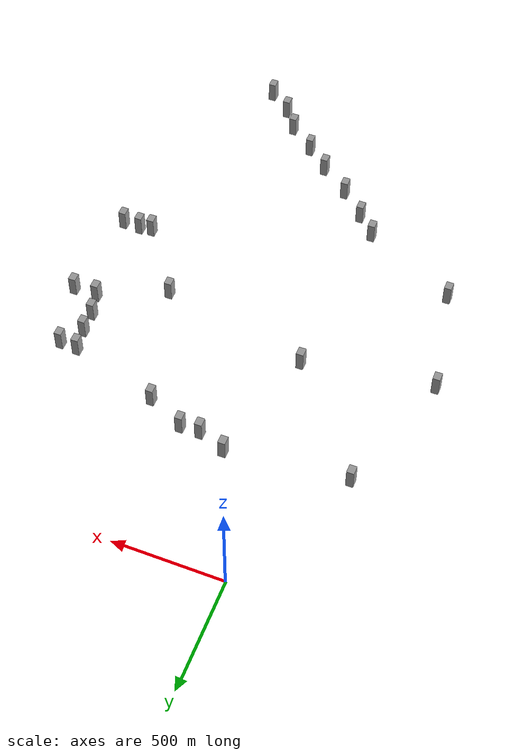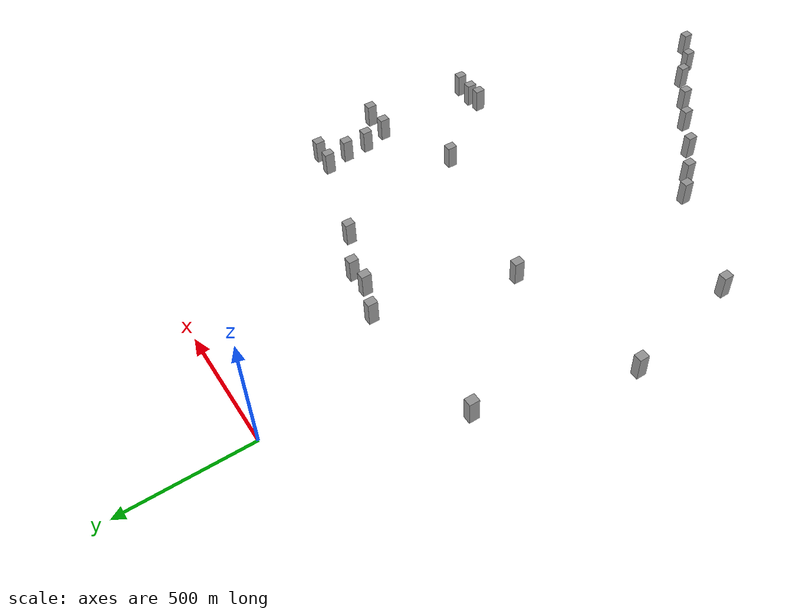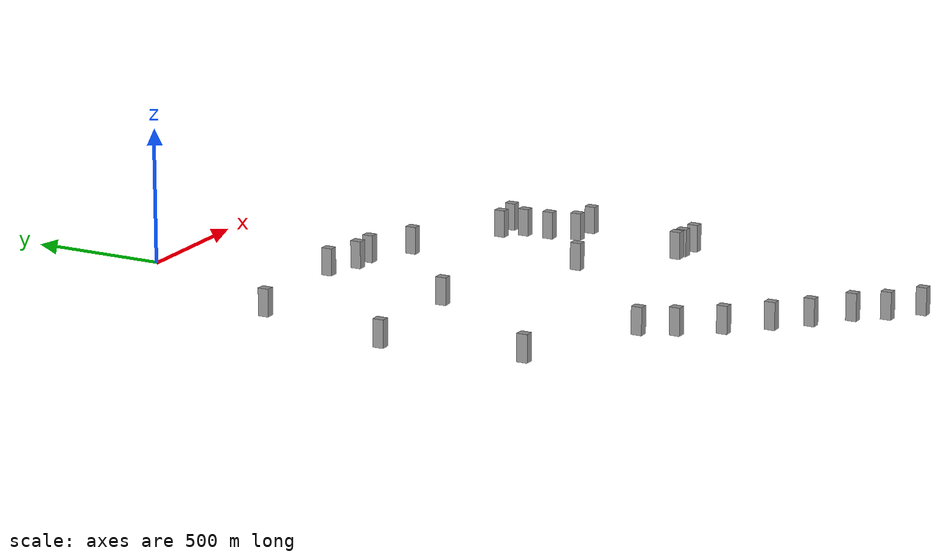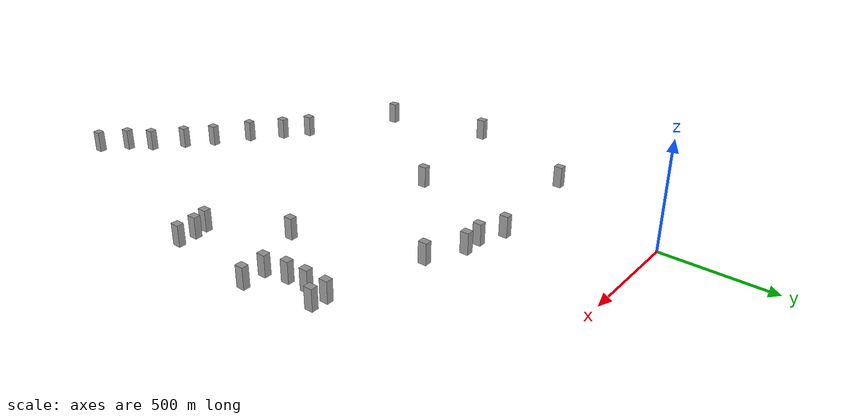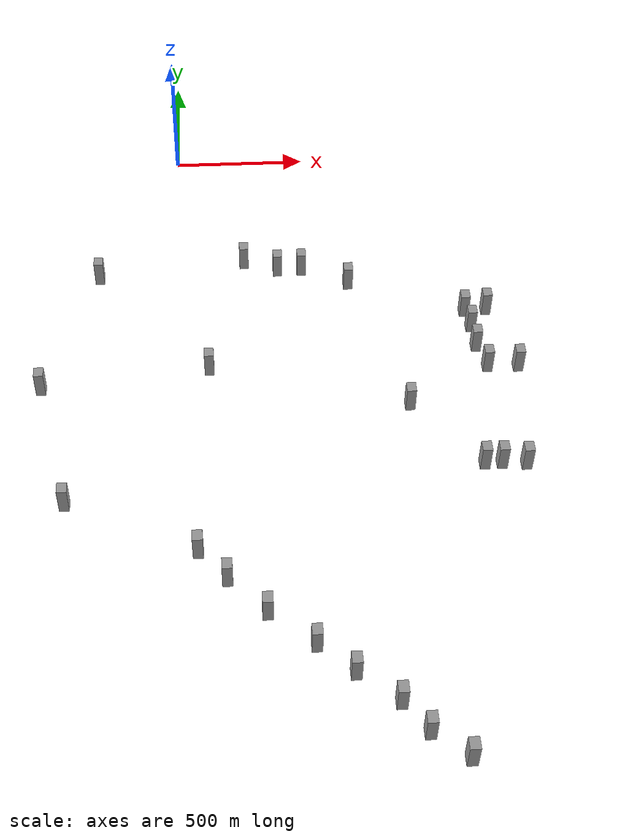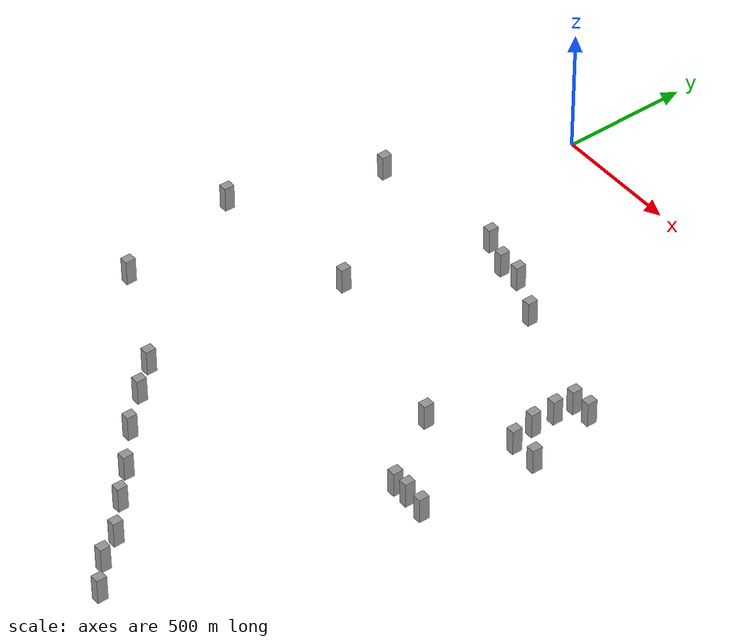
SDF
<sdf version="1.7">
 <world name="default">
  <model name="huge_building_1">
   <link name="link">
    <inertial>
     <mass>137299</mass>
     <inertia>
      <ixx>1.37911e+08</ixx>
      <ixy>0</ixy>
      <ixz>0</ixz>
      <iyy>1.32035e+08</iyy>
      <iyz>0</iyz>
      <izz>3.13216e+07</izz>
     </inertia>
    </inertial>
    <visual name="visual">
     <geometry><box><size>33.3468 40.3177 102.117</size></box></geometry>
     <material>
      <script><name>Gazebo/Grey</name><uri>file://media/materials/scripts/gazebo.material</uri></script>
      <shader type="pixel"/>
     </material>
    </visual>
    <collision name="collision">
     <geometry><box><size>33.3468 40.3177 102.117</size></box></geometry>
     <surface>
      <friction>
       <ode><mu>1</mu><mu2>1</mu2><fdir1>0 0 0</fdir1><slip1>0</slip1><slip2>0</slip2></ode>
       <torsional>
        <coefficient>1</coefficient>
        <patch_radius>0</patch_radius>
        <surface_radius>0</surface_radius>
        <use_patch_radius>1</use_patch_radius>
        <ode><slip>0</slip></ode>
       </torsional>
      </friction>
      <bounce><restitution_coefficient>0</restitution_coefficient><threshold>1e+06</threshold></bounce>
      <contact>
       <collide_without_contact>0</collide_without_contact>
       <collide_without_contact_bitmask>1</collide_without_contact_bitmask>
       <collide_bitmask>1</collide_bitmask>
       <ode>
        <soft_cfm>0</soft_cfm>
        <soft_erp>0.2</soft_erp>
        <kp>1e+13</kp>
        <kd>1</kd>
        <max_vel>0.01</max_vel>
        <min_depth>0</min_depth>
       </ode>
       <bullet>
        <split_impulse>1</split_impulse>
        <split_impulse_penetration_threshold>-0.01</split_impulse_penetration_threshold>
        <soft_cfm>0</soft_cfm>
        <soft_erp>0.2</soft_erp>
        <kp>1e+13</kp>
        <kd>1</kd>
       </bullet>
      </contact>
     </surface>
    </collision>
   </link>
   <static>0</static>
   <pose>1025.33 -1589.03 27 0 -0 0</pose>
  </model>
  <model name="huge_building_3">
   <link name="link">
    <inertial>
     <mass>137299</mass>
     <inertia>
      <ixx>1.37911e+08</ixx>
      <ixy>0</ixy>
      <ixz>0</ixz>
      <iyy>1.32035e+08</iyy>
      <iyz>0</iyz>
      <izz>3.13216e+07</izz>
     </inertia>
    </inertial>
    <visual name="visual">
     <geometry><box><size>33.3468 40.3177 102.117</size></box></geometry>
     <material>
      <script><name>Gazebo/Grey</name><uri>file://media/materials/scripts/gazebo.material</uri></script>
      <shader type="pixel"/>
     </material>
    </visual>
    <collision name="collision">
     <geometry><box><size>33.3468 40.3177 102.117</size></box></geometry>
     <surface>
      <friction>
       <ode><mu>1</mu><mu2>1</mu2><fdir1>0 0 0</fdir1><slip1>0</slip1><slip2>0</slip2></ode>
       <torsional>
        <coefficient>1</coefficient>
        <patch_radius>0</patch_radius>
        <surface_radius>0</surface_radius>
        <use_patch_radius>1</use_patch_radius>
        <ode><slip>0</slip></ode>
       </torsional>
      </friction>
      <bounce><restitution_coefficient>0</restitution_coefficient><threshold>1e+06</threshold></bounce>
      <contact>
       <collide_without_contact>0</collide_without_contact>
       <collide_without_contact_bitmask>1</collide_without_contact_bitmask>
       <collide_bitmask>1</collide_bitmask>
       <ode>
        <soft_cfm>0</soft_cfm>
        <soft_erp>0.2</soft_erp>
        <kp>1e+13</kp>
        <kd>1</kd>
        <max_vel>0.01</max_vel>
        <min_depth>0</min_depth>
       </ode>
       <bullet>
        <split_impulse>1</split_impulse>
        <split_impulse_penetration_threshold>-0.01</split_impulse_penetration_threshold>
        <soft_cfm>0</soft_cfm>
        <soft_erp>0.2</soft_erp>
        <kp>1e+13</kp>
        <kd>1</kd>
       </bullet>
      </contact>
     </surface>
    </collision>
   </link>
   <static>0</static>
   <pose>635.531 -705.591 24 0 -0 0</pose>
  </model>
  <model name="huge_building_4">
   <link name="link">
    <inertial>
     <mass>137299</mass>
     <inertia>
      <ixx>1.37911e+08</ixx>
      <ixy>0</ixy>
      <ixz>0</ixz>
      <iyy>1.32035e+08</iyy>
      <iyz>0</iyz>
      <izz>3.13216e+07</izz>
     </inertia>
    </inertial>
    <visual name="visual">
     <geometry><box><size>33.3468 40.3177 102.117</size></box></geometry>
     <material>
      <script><name>Gazebo/Grey</name><uri>file://media/materials/scripts/gazebo.material</uri></script>
      <shader type="pixel"/>
     </material>
    </visual>
    <collision name="collision">
     <geometry><box><size>33.3468 40.3177 102.117</size></box></geometry>
     <surface>
      <friction>
       <ode><mu>1</mu><mu2>1</mu2><fdir1>0 0 0</fdir1><slip1>0</slip1><slip2>0</slip2></ode>
       <torsional>
        <coefficient>1</coefficient>
        <patch_radius>0</patch_radius>
        <surface_radius>0</surface_radius>
        <use_patch_radius>1</use_patch_radius>
        <ode><slip>0</slip></ode>
       </torsional>
      </friction>
      <bounce><restitution_coefficient>0</restitution_coefficient><threshold>1e+06</threshold></bounce>
      <contact>
       <collide_without_contact>0</collide_without_contact>
       <collide_without_contact_bitmask>1</collide_without_contact_bitmask>
       <collide_bitmask>1</collide_bitmask>
       <ode>
        <soft_cfm>0</soft_cfm>
        <soft_erp>0.2</soft_erp>
        <kp>1e+13</kp>
        <kd>1</kd>
        <max_vel>0.01</max_vel>
        <min_depth>0</min_depth>
       </ode>
       <bullet>
        <split_impulse>1</split_impulse>
        <split_impulse_penetration_threshold>-0.01</split_impulse_penetration_threshold>
        <soft_cfm>0</soft_cfm>
        <soft_erp>0.2</soft_erp>
        <kp>1e+13</kp>
        <kd>1</kd>
       </bullet>
      </contact>
     </surface>
    </collision>
   </link>
   <static>0</static>
   <pose>-298.487 -633.428 26 0 -0 0</pose>
  </model>
  <model name="huge_building_12">
   <link name="link">
    <inertial>
     <mass>137299</mass>
     <inertia>
      <ixx>1.37911e+08</ixx>
      <ixy>0</ixy>
      <ixz>0</ixz>
      <iyy>1.32035e+08</iyy>
      <iyz>0</iyz>
      <izz>3.13216e+07</izz>
     </inertia>
    </inertial>
    <visual name="visual">
     <geometry><box><size>33.3468 40.3177 102.117</size></box></geometry>
     <material>
      <script><name>Gazebo/Grey</name><uri>file://media/materials/scripts/gazebo.material</uri></script>
      <shader type="pixel"/>
     </material>
    </visual>
    <collision name="collision">
     <geometry><box><size>33.3468 40.3177 102.117</size></box></geometry>
     <surface>
      <friction>
       <ode><mu>1</mu><mu2>1</mu2><fdir1>0 0 0</fdir1><slip1>0</slip1><slip2>0</slip2></ode>
       <torsional>
        <coefficient>1</coefficient>
        <patch_radius>0</patch_radius>
        <surface_radius>0</surface_radius>
        <use_patch_radius>1</use_patch_radius>
        <ode><slip>0</slip></ode>
       </torsional>
      </friction>
      <bounce><restitution_coefficient>0</restitution_coefficient><threshold>1e+06</threshold></bounce>
      <contact>
       <collide_without_contact>0</collide_without_contact>
       <collide_without_contact_bitmask>1</collide_without_contact_bitmask>
       <collide_bitmask>1</collide_bitmask>
       <ode>
        <soft_cfm>0</soft_cfm>
        <soft_erp>0.2</soft_erp>
        <kp>1e+13</kp>
        <kd>1</kd>
        <max_vel>0.01</max_vel>
        <min_depth>0</min_depth>
       </ode>
       <bullet>
        <split_impulse>1</split_impulse>
        <split_impulse_penetration_threshold>-0.01</split_impulse_penetration_threshold>
        <soft_cfm>0</soft_cfm>
        <soft_erp>0.2</soft_erp>
        <kp>1e+13</kp>
        <kd>1</kd>
       </bullet>
      </contact>
     </surface>
    </collision>
   </link>
   <static>0</static>
   <pose>1085.29 -1585.35 21 0 -0 0</pose>
  </model>
  <model name="huge_building_13">
   <link name="link">
    <inertial>
     <mass>137299</mass>
     <inertia>
      <ixx>1.37911e+08</ixx>
      <ixy>0</ixy>
      <ixz>0</ixz>
      <iyy>1.32035e+08</iyy>
      <iyz>0</iyz>
      <izz>3.13216e+07</izz>
     </inertia>
    </inertial>
    <visual name="visual">
     <geometry><box><size>33.3468 40.3177 102.117</size></box></geometry>
     <material>
      <script><name>Gazebo/Grey</name><uri>file://media/materials/scripts/gazebo.material</uri></script>
      <shader type="pixel"/>
     </material>
    </visual>
    <collision name="collision">
     <geometry><box><size>33.3468 40.3177 102.117</size></box></geometry>
     <surface>
      <friction>
       <ode><mu>1</mu><mu2>1</mu2><fdir1>0 0 0</fdir1><slip1>0</slip1><slip2>0</slip2></ode>
       <torsional>
        <coefficient>1</coefficient>
        <patch_radius>0</patch_radius>
        <surface_radius>0</surface_radius>
        <use_patch_radius>1</use_patch_radius>
        <ode><slip>0</slip></ode>
       </torsional>
      </friction>
      <bounce><restitution_coefficient>0</restitution_coefficient><threshold>1e+06</threshold></bounce>
      <contact>
       <collide_without_contact>0</collide_without_contact>
       <collide_without_contact_bitmask>1</collide_without_contact_bitmask>
       <collide_bitmask>1</collide_bitmask>
       <ode>
        <soft_cfm>0</soft_cfm>
        <soft_erp>0.2</soft_erp>
        <kp>1e+13</kp>
        <kd>1</kd>
        <max_vel>0.01</max_vel>
        <min_depth>0</min_depth>
       </ode>
       <bullet>
        <split_impulse>1</split_impulse>
        <split_impulse_penetration_threshold>-0.01</split_impulse_penetration_threshold>
        <soft_cfm>0</soft_cfm>
        <soft_erp>0.2</soft_erp>
        <kp>1e+13</kp>
        <kd>1</kd>
       </bullet>
      </contact>
     </surface>
    </collision>
   </link>
   <static>0</static>
   <pose>1168.46 -1590.58 18 0 -0 0</pose>
  </model>
  <model name="huge_building_26">
   <link name="link">
    <inertial>
     <mass>137299</mass>
     <inertia>
      <ixx>1.37911e+08</ixx>
      <ixy>0</ixy>
      <ixz>0</ixz>
      <iyy>1.32035e+08</iyy>
      <iyz>0</iyz>
      <izz>3.13216e+07</izz>
     </inertia>
    </inertial>
    <visual name="visual">
     <geometry><box><size>33.3468 40.3177 102.117</size></box></geometry>
     <material>
      <script><name>Gazebo/Grey</name><uri>file://media/materials/scripts/gazebo.material</uri></script>
      <shader type="pixel"/>
     </material>
    </visual>
    <collision name="collision">
     <geometry><box><size>33.3468 40.3177 102.117</size></box></geometry>
     <surface>
      <friction>
       <ode><mu>1</mu><mu2>1</mu2><fdir1>0 0 0</fdir1><slip1>0</slip1><slip2>0</slip2></ode>
       <torsional>
        <coefficient>1</coefficient>
        <patch_radius>0</patch_radius>
        <surface_radius>0</surface_radius>
        <use_patch_radius>1</use_patch_radius>
        <ode><slip>0</slip></ode>
       </torsional>
      </friction>
      <bounce><restitution_coefficient>0</restitution_coefficient><threshold>1e+06</threshold></bounce>
      <contact>
       <collide_without_contact>0</collide_without_contact>
       <collide_without_contact_bitmask>1</collide_without_contact_bitmask>
       <collide_bitmask>1</collide_bitmask>
       <ode>
        <soft_cfm>0</soft_cfm>
        <soft_erp>0.2</soft_erp>
        <kp>1e+13</kp>
        <kd>1</kd>
        <max_vel>0.01</max_vel>
        <min_depth>0</min_depth>
       </ode>
       <bullet>
        <split_impulse>1</split_impulse>
        <split_impulse_penetration_threshold>-0.01</split_impulse_penetration_threshold>
        <soft_cfm>0</soft_cfm>
        <soft_erp>0.2</soft_erp>
        <kp>1e+13</kp>
        <kd>1</kd>
       </bullet>
      </contact>
     </surface>
    </collision>
   </link>
   <static>0</static>
   <pose>830.839 -2647.02 20 0 -0 0</pose>
  </model>
  <model name="huge_building_27">
   <link name="link">
    <inertial>
     <mass>137299</mass>
     <inertia>
      <ixx>1.37911e+08</ixx>
      <ixy>0</ixy>
      <ixz>0</ixz>
      <iyy>1.32035e+08</iyy>
      <iyz>0</iyz>
      <izz>3.13216e+07</izz>
     </inertia>
    </inertial>
    <visual name="visual">
     <geometry><box><size>33.3468 40.3177 102.117</size></box></geometry>
     <material>
      <script><name>Gazebo/Grey</name><uri>file://media/materials/scripts/gazebo.material</uri></script>
      <shader type="pixel"/>
     </material>
    </visual>
    <collision name="collision">
     <geometry><box><size>33.3468 40.3177 102.117</size></box></geometry>
     <surface>
      <friction>
       <ode><mu>1</mu><mu2>1</mu2><fdir1>0 0 0</fdir1><slip1>0</slip1><slip2>0</slip2></ode>
       <torsional>
        <coefficient>1</coefficient>
        <patch_radius>0</patch_radius>
        <surface_radius>0</surface_radius>
        <use_patch_radius>1</use_patch_radius>
        <ode><slip>0</slip></ode>
       </torsional>
      </friction>
      <bounce><restitution_coefficient>0</restitution_coefficient><threshold>1e+06</threshold></bounce>
      <contact>
       <collide_without_contact>0</collide_without_contact>
       <collide_without_contact_bitmask>1</collide_without_contact_bitmask>
       <collide_bitmask>1</collide_bitmask>
       <ode>
        <soft_cfm>0</soft_cfm>
        <soft_erp>0.2</soft_erp>
        <kp>1e+13</kp>
        <kd>1</kd>
        <max_vel>0.01</max_vel>
        <min_depth>0</min_depth>
       </ode>
       <bullet>
        <split_impulse>1</split_impulse>
        <split_impulse_penetration_threshold>-0.01</split_impulse_penetration_threshold>
        <soft_cfm>0</soft_cfm>
        <soft_erp>0.2</soft_erp>
        <kp>1e+13</kp>
        <kd>1</kd>
       </bullet>
      </contact>
     </surface>
    </collision>
   </link>
   <static>0</static>
   <pose>722.414 -2559.58 20 0 -0 0</pose>
  </model>
  <model name="huge_building_28">
   <link name="link">
    <inertial>
     <mass>137299</mass>
     <inertia>
      <ixx>1.37911e+08</ixx>
      <ixy>0</ixy>
      <ixz>0</ixz>
      <iyy>1.32035e+08</iyy>
      <iyz>0</iyz>
      <izz>3.13216e+07</izz>
     </inertia>
    </inertial>
    <visual name="visual">
     <geometry><box><size>33.3468 40.3177 102.117</size></box></geometry>
     <material>
      <script><name>Gazebo/Grey</name><uri>file://media/materials/scripts/gazebo.material</uri></script>
      <shader type="pixel"/>
     </material>
    </visual>
    <collision name="collision">
     <geometry><box><size>33.3468 40.3177 102.117</size></box></geometry>
     <surface>
      <friction>
       <ode><mu>1</mu><mu2>1</mu2><fdir1>0 0 0</fdir1><slip1>0</slip1><slip2>0</slip2></ode>
       <torsional>
        <coefficient>1</coefficient>
        <patch_radius>0</patch_radius>
        <surface_radius>0</surface_radius>
        <use_patch_radius>1</use_patch_radius>
        <ode><slip>0</slip></ode>
       </torsional>
      </friction>
      <bounce><restitution_coefficient>0</restitution_coefficient><threshold>1e+06</threshold></bounce>
      <contact>
       <collide_without_contact>0</collide_without_contact>
       <collide_without_contact_bitmask>1</collide_without_contact_bitmask>
       <collide_bitmask>1</collide_bitmask>
       <ode>
        <soft_cfm>0</soft_cfm>
        <soft_erp>0.2</soft_erp>
        <kp>1e+13</kp>
        <kd>1</kd>
        <max_vel>0.01</max_vel>
        <min_depth>0</min_depth>
       </ode>
       <bullet>
        <split_impulse>1</split_impulse>
        <split_impulse_penetration_threshold>-0.01</split_impulse_penetration_threshold>
        <soft_cfm>0</soft_cfm>
        <soft_erp>0.2</soft_erp>
        <kp>1e+13</kp>
        <kd>1</kd>
       </bullet>
      </contact>
     </surface>
    </collision>
   </link>
   <static>0</static>
   <pose>650.039 -2459.02 20 0 -0 0</pose>
  </model>
  <model name="huge_building_29">
   <link name="link">
    <inertial>
     <mass>137299</mass>
     <inertia>
      <ixx>1.37911e+08</ixx>
      <ixy>0</ixy>
      <ixz>0</ixz>
      <iyy>1.32035e+08</iyy>
      <iyz>0</iyz>
      <izz>3.13216e+07</izz>
     </inertia>
    </inertial>
    <visual name="visual">
     <geometry><box><size>33.3468 40.3177 102.117</size></box></geometry>
     <material>
      <script><name>Gazebo/Grey</name><uri>file://media/materials/scripts/gazebo.material</uri></script>
      <shader type="pixel"/>
     </material>
    </visual>
    <collision name="collision">
     <geometry><box><size>33.3468 40.3177 102.117</size></box></geometry>
     <surface>
      <friction>
       <ode><mu>1</mu><mu2>1</mu2><fdir1>0 0 0</fdir1><slip1>0</slip1><slip2>0</slip2></ode>
       <torsional>
        <coefficient>1</coefficient>
        <patch_radius>0</patch_radius>
        <surface_radius>0</surface_radius>
        <use_patch_radius>1</use_patch_radius>
        <ode><slip>0</slip></ode>
       </torsional>
      </friction>
      <bounce><restitution_coefficient>0</restitution_coefficient><threshold>1e+06</threshold></bounce>
      <contact>
       <collide_without_contact>0</collide_without_contact>
       <collide_without_contact_bitmask>1</collide_without_contact_bitmask>
       <collide_bitmask>1</collide_bitmask>
       <ode>
        <soft_cfm>0</soft_cfm>
        <soft_erp>0.2</soft_erp>
        <kp>1e+13</kp>
        <kd>1</kd>
        <max_vel>0.01</max_vel>
        <min_depth>0</min_depth>
       </ode>
       <bullet>
        <split_impulse>1</split_impulse>
        <split_impulse_penetration_threshold>-0.01</split_impulse_penetration_threshold>
        <soft_cfm>0</soft_cfm>
        <soft_erp>0.2</soft_erp>
        <kp>1e+13</kp>
        <kd>1</kd>
       </bullet>
      </contact>
     </surface>
    </collision>
   </link>
   <static>0</static>
   <pose>524.275 -2355.7 20 0 -0 0</pose>
  </model>
  <model name="huge_building_30">
   <link name="link">
    <inertial>
     <mass>137299</mass>
     <inertia>
      <ixx>1.37911e+08</ixx>
      <ixy>0</ixy>
      <ixz>0</ixz>
      <iyy>1.32035e+08</iyy>
      <iyz>0</iyz>
      <izz>3.13216e+07</izz>
     </inertia>
    </inertial>
    <visual name="visual">
     <geometry><box><size>33.3468 40.3177 102.117</size></box></geometry>
     <material>
      <script><name>Gazebo/Grey</name><uri>file://media/materials/scripts/gazebo.material</uri></script>
      <shader type="pixel"/>
     </material>
    </visual>
    <collision name="collision">
     <geometry><box><size>33.3468 40.3177 102.117</size></box></geometry>
     <surface>
      <friction>
       <ode><mu>1</mu><mu2>1</mu2><fdir1>0 0 0</fdir1><slip1>0</slip1><slip2>0</slip2></ode>
       <torsional>
        <coefficient>1</coefficient>
        <patch_radius>0</patch_radius>
        <surface_radius>0</surface_radius>
        <use_patch_radius>1</use_patch_radius>
        <ode><slip>0</slip></ode>
       </torsional>
      </friction>
      <bounce><restitution_coefficient>0</restitution_coefficient><threshold>1e+06</threshold></bounce>
      <contact>
       <collide_without_contact>0</collide_without_contact>
       <collide_without_contact_bitmask>1</collide_without_contact_bitmask>
       <collide_bitmask>1</collide_bitmask>
       <ode>
        <soft_cfm>0</soft_cfm>
        <soft_erp>0.2</soft_erp>
        <kp>1e+13</kp>
        <kd>1</kd>
        <max_vel>0.01</max_vel>
        <min_depth>0</min_depth>
       </ode>
       <bullet>
        <split_impulse>1</split_impulse>
        <split_impulse_penetration_threshold>-0.01</split_impulse_penetration_threshold>
        <soft_cfm>0</soft_cfm>
        <soft_erp>0.2</soft_erp>
        <kp>1e+13</kp>
        <kd>1</kd>
       </bullet>
      </contact>
     </surface>
    </collision>
   </link>
   <static>0</static>
   <pose>413.35 -2255.65 22 0 -0 0</pose>
  </model>
  <model name="huge_building_31">
   <link name="link">
    <inertial>
     <mass>137299</mass>
     <inertia>
      <ixx>1.37911e+08</ixx>
      <ixy>0</ixy>
      <ixz>0</ixz>
      <iyy>1.32035e+08</iyy>
      <iyz>0</iyz>
      <izz>3.13216e+07</izz>
     </inertia>
    </inertial>
    <visual name="visual">
     <geometry><box><size>33.3468 40.3177 102.117</size></box></geometry>
     <material>
      <script><name>Gazebo/Grey</name><uri>file://media/materials/scripts/gazebo.material</uri></script>
      <shader type="pixel"/>
     </material>
    </visual>
    <collision name="collision">
     <geometry><box><size>33.3468 40.3177 102.117</size></box></geometry>
     <surface>
      <friction>
       <ode><mu>1</mu><mu2>1</mu2><fdir1>0 0 0</fdir1><slip1>0</slip1><slip2>0</slip2></ode>
       <torsional>
        <coefficient>1</coefficient>
        <patch_radius>0</patch_radius>
        <surface_radius>0</surface_radius>
        <use_patch_radius>1</use_patch_radius>
        <ode><slip>0</slip></ode>
       </torsional>
      </friction>
      <bounce><restitution_coefficient>0</restitution_coefficient><threshold>1e+06</threshold></bounce>
      <contact>
       <collide_without_contact>0</collide_without_contact>
       <collide_without_contact_bitmask>1</collide_without_contact_bitmask>
       <collide_bitmask>1</collide_bitmask>
       <ode>
        <soft_cfm>0</soft_cfm>
        <soft_erp>0.2</soft_erp>
        <kp>1e+13</kp>
        <kd>1</kd>
        <max_vel>0.01</max_vel>
        <min_depth>0</min_depth>
       </ode>
       <bullet>
        <split_impulse>1</split_impulse>
        <split_impulse_penetration_threshold>-0.01</split_impulse_penetration_threshold>
        <soft_cfm>0</soft_cfm>
        <soft_erp>0.2</soft_erp>
        <kp>1e+13</kp>
        <kd>1</kd>
       </bullet>
      </contact>
     </surface>
    </collision>
   </link>
   <static>0</static>
   <pose>269.202 -2140.6 30 0 -0 0</pose>
  </model>
  <model name="huge_building_32">
   <link name="link">
    <inertial>
     <mass>137299</mass>
     <inertia>
      <ixx>1.37911e+08</ixx>
      <ixy>0</ixy>
      <ixz>0</ixz>
      <iyy>1.32035e+08</iyy>
      <iyz>0</iyz>
      <izz>3.13216e+07</izz>
     </inertia>
    </inertial>
    <visual name="visual">
     <geometry><box><size>33.3468 40.3177 102.117</size></box></geometry>
     <material>
      <script><name>Gazebo/Grey</name><uri>file://media/materials/scripts/gazebo.material</uri></script>
      <shader type="pixel"/>
     </material>
    </visual>
    <collision name="collision">
     <geometry><box><size>33.3468 40.3177 102.117</size></box></geometry>
     <surface>
      <friction>
       <ode><mu>1</mu><mu2>1</mu2><fdir1>0 0 0</fdir1><slip1>0</slip1><slip2>0</slip2></ode>
       <torsional>
        <coefficient>1</coefficient>
        <patch_radius>0</patch_radius>
        <surface_radius>0</surface_radius>
        <use_patch_radius>1</use_patch_radius>
        <ode><slip>0</slip></ode>
       </torsional>
      </friction>
      <bounce><restitution_coefficient>0</restitution_coefficient><threshold>1e+06</threshold></bounce>
      <contact>
       <collide_without_contact>0</collide_without_contact>
       <collide_without_contact_bitmask>1</collide_without_contact_bitmask>
       <collide_bitmask>1</collide_bitmask>
       <ode>
        <soft_cfm>0</soft_cfm>
        <soft_erp>0.2</soft_erp>
        <kp>1e+13</kp>
        <kd>1</kd>
        <max_vel>0.01</max_vel>
        <min_depth>0</min_depth>
       </ode>
       <bullet>
        <split_impulse>1</split_impulse>
        <split_impulse_penetration_threshold>-0.01</split_impulse_penetration_threshold>
        <soft_cfm>0</soft_cfm>
        <soft_erp>0.2</soft_erp>
        <kp>1e+13</kp>
        <kd>1</kd>
       </bullet>
      </contact>
     </surface>
    </collision>
   </link>
   <static>0</static>
   <pose>148.501 -2017.38 38 0 -0 0</pose>
  </model>
  <model name="huge_building_33">
   <link name="link">
    <inertial>
     <mass>137299</mass>
     <inertia>
      <ixx>1.37911e+08</ixx>
      <ixy>0</ixy>
      <ixz>0</ixz>
      <iyy>1.32035e+08</iyy>
      <iyz>0</iyz>
      <izz>3.13216e+07</izz>
     </inertia>
    </inertial>
    <visual name="visual">
     <geometry><box><size>33.3468 40.3177 102.117</size></box></geometry>
     <material>
      <script><name>Gazebo/Grey</name><uri>file://media/materials/scripts/gazebo.material</uri></script>
      <shader type="pixel"/>
     </material>
    </visual>
    <collision name="collision">
     <geometry><box><size>33.3468 40.3177 102.117</size></box></geometry>
     <surface>
      <friction>
       <ode><mu>1</mu><mu2>1</mu2><fdir1>0 0 0</fdir1><slip1>0</slip1><slip2>0</slip2></ode>
       <torsional>
        <coefficient>1</coefficient>
        <patch_radius>0</patch_radius>
        <surface_radius>0</surface_radius>
        <use_patch_radius>1</use_patch_radius>
        <ode><slip>0</slip></ode>
       </torsional>
      </friction>
      <bounce><restitution_coefficient>0</restitution_coefficient><threshold>1e+06</threshold></bounce>
      <contact>
       <collide_without_contact>0</collide_without_contact>
       <collide_without_contact_bitmask>1</collide_without_contact_bitmask>
       <collide_bitmask>1</collide_bitmask>
       <ode>
        <soft_cfm>0</soft_cfm>
        <soft_erp>0.2</soft_erp>
        <kp>1e+13</kp>
        <kd>1</kd>
        <max_vel>0.01</max_vel>
        <min_depth>0</min_depth>
       </ode>
       <bullet>
        <split_impulse>1</split_impulse>
        <split_impulse_penetration_threshold>-0.01</split_impulse_penetration_threshold>
        <soft_cfm>0</soft_cfm>
        <soft_erp>0.2</soft_erp>
        <kp>1e+13</kp>
        <kd>1</kd>
       </bullet>
      </contact>
     </surface>
    </collision>
   </link>
   <static>0</static>
   <pose>58.1126 -1915.78 50 0 -0 0</pose>
  </model>
  <model name="huge_building_35">
   <link name="link">
    <inertial>
     <mass>137299</mass>
     <inertia>
      <ixx>1.37911e+08</ixx>
      <ixy>0</ixy>
      <ixz>0</ixz>
      <iyy>1.32035e+08</iyy>
      <iyz>0</iyz>
      <izz>3.13216e+07</izz>
     </inertia>
    </inertial>
    <visual name="visual">
     <geometry><box><size>33.3468 40.3177 102.117</size></box></geometry>
     <material>
      <script><name>Gazebo/Grey</name><uri>file://media/materials/scripts/gazebo.material</uri></script>
      <shader type="pixel"/>
     </material>
    </visual>
    <collision name="collision">
     <geometry><box><size>33.3468 40.3177 102.117</size></box></geometry>
     <surface>
      <friction>
       <ode><mu>1</mu><mu2>1</mu2><fdir1>0 0 0</fdir1><slip1>0</slip1><slip2>0</slip2></ode>
       <torsional>
        <coefficient>1</coefficient>
        <patch_radius>0</patch_radius>
        <surface_radius>0</surface_radius>
        <use_patch_radius>1</use_patch_radius>
        <ode><slip>0</slip></ode>
       </torsional>
      </friction>
      <bounce><restitution_coefficient>0</restitution_coefficient><threshold>1e+06</threshold></bounce>
      <contact>
       <collide_without_contact>0</collide_without_contact>
       <collide_without_contact_bitmask>1</collide_without_contact_bitmask>
       <collide_bitmask>1</collide_bitmask>
       <ode>
        <soft_cfm>0</soft_cfm>
        <soft_erp>0.2</soft_erp>
        <kp>1e+13</kp>
        <kd>1</kd>
        <max_vel>0.01</max_vel>
        <min_depth>0</min_depth>
       </ode>
       <bullet>
        <split_impulse>1</split_impulse>
        <split_impulse_penetration_threshold>-0.01</split_impulse_penetration_threshold>
        <soft_cfm>0</soft_cfm>
        <soft_erp>0.2</soft_erp>
        <kp>1e+13</kp>
        <kd>1</kd>
       </bullet>
      </contact>
     </surface>
    </collision>
   </link>
   <static>0</static>
   <pose>1212.32 -1146.2 16 0 -0 0</pose>
  </model>
  <model name="huge_building_36">
   <link name="link">
    <inertial>
     <mass>137299</mass>
     <inertia>
      <ixx>1.37911e+08</ixx>
      <ixy>0</ixy>
      <ixz>0</ixz>
      <iyy>1.32035e+08</iyy>
      <iyz>0</iyz>
      <izz>3.13216e+07</izz>
     </inertia>
    </inertial>
    <visual name="visual">
     <geometry><box><size>33.3468 40.3177 102.117</size></box></geometry>
     <material>
      <script><name>Gazebo/Grey</name><uri>file://media/materials/scripts/gazebo.material</uri></script>
      <shader type="pixel"/>
     </material>
    </visual>
    <collision name="collision">
     <geometry><box><size>33.3468 40.3177 102.117</size></box></geometry>
     <surface>
      <friction>
       <ode><mu>1</mu><mu2>1</mu2><fdir1>0 0 0</fdir1><slip1>0</slip1><slip2>0</slip2></ode>
       <torsional>
        <coefficient>1</coefficient>
        <patch_radius>0</patch_radius>
        <surface_radius>0</surface_radius>
        <use_patch_radius>1</use_patch_radius>
        <ode><slip>0</slip></ode>
       </torsional>
      </friction>
      <bounce><restitution_coefficient>0</restitution_coefficient><threshold>1e+06</threshold></bounce>
      <contact>
       <collide_without_contact>0</collide_without_contact>
       <collide_without_contact_bitmask>1</collide_without_contact_bitmask>
       <collide_bitmask>1</collide_bitmask>
       <ode>
        <soft_cfm>0</soft_cfm>
        <soft_erp>0.2</soft_erp>
        <kp>1e+13</kp>
        <kd>1</kd>
        <max_vel>0.01</max_vel>
        <min_depth>0</min_depth>
       </ode>
       <bullet>
        <split_impulse>1</split_impulse>
        <split_impulse_penetration_threshold>-0.01</split_impulse_penetration_threshold>
        <soft_cfm>0</soft_cfm>
        <soft_erp>0.2</soft_erp>
        <kp>1e+13</kp>
        <kd>1</kd>
       </bullet>
      </contact>
     </surface>
    </collision>
   </link>
   <static>0</static>
   <pose>1101.49 -1144.01 18 0 -0 0</pose>
  </model>
  <model name="huge_building_37">
   <link name="link">
    <inertial>
     <mass>137299</mass>
     <inertia>
      <ixx>1.37911e+08</ixx>
      <ixy>0</ixy>
      <ixz>0</ixz>
      <iyy>1.32035e+08</iyy>
      <iyz>0</iyz>
      <izz>3.13216e+07</izz>
     </inertia>
    </inertial>
    <visual name="visual">
     <geometry><box><size>33.3468 40.3177 102.117</size></box></geometry>
     <material>
      <script><name>Gazebo/Grey</name><uri>file://media/materials/scripts/gazebo.material</uri></script>
      <shader type="pixel"/>
     </material>
    </visual>
    <collision name="collision">
     <geometry><box><size>33.3468 40.3177 102.117</size></box></geometry>
     <surface>
      <friction>
       <ode><mu>1</mu><mu2>1</mu2><fdir1>0 0 0</fdir1><slip1>0</slip1><slip2>0</slip2></ode>
       <torsional>
        <coefficient>1</coefficient>
        <patch_radius>0</patch_radius>
        <surface_radius>0</surface_radius>
        <use_patch_radius>1</use_patch_radius>
        <ode><slip>0</slip></ode>
       </torsional>
      </friction>
      <bounce><restitution_coefficient>0</restitution_coefficient><threshold>1e+06</threshold></bounce>
      <contact>
       <collide_without_contact>0</collide_without_contact>
       <collide_without_contact_bitmask>1</collide_without_contact_bitmask>
       <collide_bitmask>1</collide_bitmask>
       <ode>
        <soft_cfm>0</soft_cfm>
        <soft_erp>0.2</soft_erp>
        <kp>1e+13</kp>
        <kd>1</kd>
        <max_vel>0.01</max_vel>
        <min_depth>0</min_depth>
       </ode>
       <bullet>
        <split_impulse>1</split_impulse>
        <split_impulse_penetration_threshold>-0.01</split_impulse_penetration_threshold>
        <soft_cfm>0</soft_cfm>
        <soft_erp>0.2</soft_erp>
        <kp>1e+13</kp>
        <kd>1</kd>
       </bullet>
      </contact>
     </surface>
    </collision>
   </link>
   <static>0</static>
   <pose>1074.68 -1041.48 16 0 -0 0</pose>
  </model>
  <model name="huge_building_38">
   <link name="link">
    <inertial>
     <mass>137299</mass>
     <inertia>
      <ixx>1.37911e+08</ixx>
      <ixy>0</ixy>
      <ixz>0</ixz>
      <iyy>1.32035e+08</iyy>
      <iyz>0</iyz>
      <izz>3.13216e+07</izz>
     </inertia>
    </inertial>
    <visual name="visual">
     <geometry><box><size>33.3468 40.3177 102.117</size></box></geometry>
     <material>
      <script><name>Gazebo/Grey</name><uri>file://media/materials/scripts/gazebo.material</uri></script>
      <shader type="pixel"/>
     </material>
    </visual>
    <collision name="collision">
     <geometry><box><size>33.3468 40.3177 102.117</size></box></geometry>
     <surface>
      <friction>
       <ode><mu>1</mu><mu2>1</mu2><fdir1>0 0 0</fdir1><slip1>0</slip1><slip2>0</slip2></ode>
       <torsional>
        <coefficient>1</coefficient>
        <patch_radius>0</patch_radius>
        <surface_radius>0</surface_radius>
        <use_patch_radius>1</use_patch_radius>
        <ode><slip>0</slip></ode>
       </torsional>
      </friction>
      <bounce><restitution_coefficient>0</restitution_coefficient><threshold>1e+06</threshold></bounce>
      <contact>
       <collide_without_contact>0</collide_without_contact>
       <collide_without_contact_bitmask>1</collide_without_contact_bitmask>
       <collide_bitmask>1</collide_bitmask>
       <ode>
        <soft_cfm>0</soft_cfm>
        <soft_erp>0.2</soft_erp>
        <kp>1e+13</kp>
        <kd>1</kd>
        <max_vel>0.01</max_vel>
        <min_depth>0</min_depth>
       </ode>
       <bullet>
        <split_impulse>1</split_impulse>
        <split_impulse_penetration_threshold>-0.01</split_impulse_penetration_threshold>
        <soft_cfm>0</soft_cfm>
        <soft_erp>0.2</soft_erp>
        <kp>1e+13</kp>
        <kd>1</kd>
       </bullet>
      </contact>
     </surface>
    </collision>
   </link>
   <static>0</static>
   <pose>1069.8 -942.778 15 0 -0 0</pose>
  </model>
  <model name="huge_building_39">
   <link name="link">
    <inertial>
     <mass>137299</mass>
     <inertia>
      <ixx>1.37911e+08</ixx>
      <ixy>0</ixy>
      <ixz>0</ixz>
      <iyy>1.32035e+08</iyy>
      <iyz>0</iyz>
      <izz>3.13216e+07</izz>
     </inertia>
    </inertial>
    <visual name="visual">
     <geometry><box><size>33.3468 40.3177 102.117</size></box></geometry>
     <material>
      <script><name>Gazebo/Grey</name><uri>file://media/materials/scripts/gazebo.material</uri></script>
      <shader type="pixel"/>
     </material>
    </visual>
    <collision name="collision">
     <geometry><box><size>33.3468 40.3177 102.117</size></box></geometry>
     <surface>
      <friction>
       <ode><mu>1</mu><mu2>1</mu2><fdir1>0 0 0</fdir1><slip1>0</slip1><slip2>0</slip2></ode>
       <torsional>
        <coefficient>1</coefficient>
        <patch_radius>0</patch_radius>
        <surface_radius>0</surface_radius>
        <use_patch_radius>1</use_patch_radius>
        <ode><slip>0</slip></ode>
       </torsional>
      </friction>
      <bounce><restitution_coefficient>0</restitution_coefficient><threshold>1e+06</threshold></bounce>
      <contact>
       <collide_without_contact>0</collide_without_contact>
       <collide_without_contact_bitmask>1</collide_without_contact_bitmask>
       <collide_bitmask>1</collide_bitmask>
       <ode>
        <soft_cfm>0</soft_cfm>
        <soft_erp>0.2</soft_erp>
        <kp>1e+13</kp>
        <kd>1</kd>
        <max_vel>0.01</max_vel>
        <min_depth>0</min_depth>
       </ode>
       <bullet>
        <split_impulse>1</split_impulse>
        <split_impulse_penetration_threshold>-0.01</split_impulse_penetration_threshold>
        <soft_cfm>0</soft_cfm>
        <soft_erp>0.2</soft_erp>
        <kp>1e+13</kp>
        <kd>1</kd>
       </bullet>
      </contact>
     </surface>
    </collision>
   </link>
   <static>0</static>
   <pose>1058.78 -848.672 0 0 -0 0</pose>
  </model>
  <model name="huge_building_40">
   <link name="link">
    <inertial>
     <mass>137299</mass>
     <inertia>
      <ixx>1.37911e+08</ixx>
      <ixy>0</ixy>
      <ixz>0</ixz>
      <iyy>1.32035e+08</iyy>
      <iyz>0</iyz>
      <izz>3.13216e+07</izz>
     </inertia>
    </inertial>
    <visual name="visual">
     <geometry><box><size>33.3468 40.3177 102.117</size></box></geometry>
     <material>
      <script><name>Gazebo/Grey</name><uri>file://media/materials/scripts/gazebo.material</uri></script>
      <shader type="pixel"/>
     </material>
    </visual>
    <collision name="collision">
     <geometry><box><size>33.3468 40.3177 102.117</size></box></geometry>
     <surface>
      <friction>
       <ode><mu>1</mu><mu2>1</mu2><fdir1>0 0 0</fdir1><slip1>0</slip1><slip2>0</slip2></ode>
       <torsional>
        <coefficient>1</coefficient>
        <patch_radius>0</patch_radius>
        <surface_radius>0</surface_radius>
        <use_patch_radius>1</use_patch_radius>
        <ode><slip>0</slip></ode>
       </torsional>
      </friction>
      <bounce><restitution_coefficient>0</restitution_coefficient><threshold>1e+06</threshold></bounce>
      <contact>
       <collide_without_contact>0</collide_without_contact>
       <collide_without_contact_bitmask>1</collide_without_contact_bitmask>
       <collide_bitmask>1</collide_bitmask>
       <ode>
        <soft_cfm>0</soft_cfm>
        <soft_erp>0.2</soft_erp>
        <kp>1e+13</kp>
        <kd>1</kd>
        <max_vel>0.01</max_vel>
        <min_depth>0</min_depth>
       </ode>
       <bullet>
        <split_impulse>1</split_impulse>
        <split_impulse_penetration_threshold>-0.01</split_impulse_penetration_threshold>
        <soft_cfm>0</soft_cfm>
        <soft_erp>0.2</soft_erp>
        <kp>1e+13</kp>
        <kd>1</kd>
       </bullet>
      </contact>
     </surface>
    </collision>
   </link>
   <static>0</static>
   <pose>1139.46 -849.906 7 0 -0 0</pose>
  </model>
  <model name="huge_building_42">
   <link name="link">
    <inertial>
     <mass>137299</mass>
     <inertia>
      <ixx>1.37911e+08</ixx>
      <ixy>0</ixy>
      <ixz>0</ixz>
      <iyy>1.32035e+08</iyy>
      <iyz>0</iyz>
      <izz>3.13216e+07</izz>
     </inertia>
    </inertial>
    <visual name="visual">
     <geometry><box><size>33.3468 40.3177 102.117</size></box></geometry>
     <material>
      <script><name>Gazebo/Grey</name><uri>file://media/materials/scripts/gazebo.material</uri></script>
      <shader type="pixel"/>
     </material>
    </visual>
    <collision name="collision">
     <geometry><box><size>33.3468 40.3177 102.117</size></box></geometry>
     <surface>
      <friction>
       <ode><mu>1</mu><mu2>1</mu2><fdir1>0 0 0</fdir1><slip1>0</slip1><slip2>0</slip2></ode>
       <torsional>
        <coefficient>1</coefficient>
        <patch_radius>0</patch_radius>
        <surface_radius>0</surface_radius>
        <use_patch_radius>1</use_patch_radius>
        <ode><slip>0</slip></ode>
       </torsional>
      </friction>
      <bounce><restitution_coefficient>0</restitution_coefficient><threshold>1e+06</threshold></bounce>
      <contact>
       <collide_without_contact>0</collide_without_contact>
       <collide_without_contact_bitmask>1</collide_without_contact_bitmask>
       <collide_bitmask>1</collide_bitmask>
       <ode>
        <soft_cfm>0</soft_cfm>
        <soft_erp>0.2</soft_erp>
        <kp>1e+13</kp>
        <kd>1</kd>
        <max_vel>0.01</max_vel>
        <min_depth>0</min_depth>
       </ode>
       <bullet>
        <split_impulse>1</split_impulse>
        <split_impulse_penetration_threshold>-0.01</split_impulse_penetration_threshold>
        <soft_cfm>0</soft_cfm>
        <soft_erp>0.2</soft_erp>
        <kp>1e+13</kp>
        <kd>1</kd>
       </bullet>
      </contact>
     </surface>
    </collision>
   </link>
   <static>0</static>
   <pose>374.015 -622.765 25 0 -0 0</pose>
  </model>
  <model name="huge_building_43">
   <link name="link">
    <inertial>
     <mass>137299</mass>
     <inertia>
      <ixx>1.37911e+08</ixx>
      <ixy>0</ixy>
      <ixz>0</ixz>
      <iyy>1.32035e+08</iyy>
      <iyz>0</iyz>
      <izz>3.13216e+07</izz>
     </inertia>
    </inertial>
    <visual name="visual">
     <geometry><box><size>33.3468 40.3177 102.117</size></box></geometry>
     <material>
      <script><name>Gazebo/Grey</name><uri>file://media/materials/scripts/gazebo.material</uri></script>
      <shader type="pixel"/>
     </material>
    </visual>
    <collision name="collision">
     <geometry><box><size>33.3468 40.3177 102.117</size></box></geometry>
     <surface>
      <friction>
       <ode><mu>1</mu><mu2>1</mu2><fdir1>0 0 0</fdir1><slip1>0</slip1><slip2>0</slip2></ode>
       <torsional>
        <coefficient>1</coefficient>
        <patch_radius>0</patch_radius>
        <surface_radius>0</surface_radius>
        <use_patch_radius>1</use_patch_radius>
        <ode><slip>0</slip></ode>
       </torsional>
      </friction>
      <bounce><restitution_coefficient>0</restitution_coefficient><threshold>1e+06</threshold></bounce>
      <contact>
       <collide_without_contact>0</collide_without_contact>
       <collide_without_contact_bitmask>1</collide_without_contact_bitmask>
       <collide_bitmask>1</collide_bitmask>
       <ode>
        <soft_cfm>0</soft_cfm>
        <soft_erp>0.2</soft_erp>
        <kp>1e+13</kp>
        <kd>1</kd>
        <max_vel>0.01</max_vel>
        <min_depth>0</min_depth>
       </ode>
       <bullet>
        <split_impulse>1</split_impulse>
        <split_impulse_penetration_threshold>-0.01</split_impulse_penetration_threshold>
        <soft_cfm>0</soft_cfm>
        <soft_erp>0.2</soft_erp>
        <kp>1e+13</kp>
        <kd>1</kd>
       </bullet>
      </contact>
     </surface>
    </collision>
   </link>
   <static>0</static>
   <pose>248.22 -574.352 24 0 -0 0</pose>
  </model>
  <model name="huge_building_137">
   <link name="link">
    <inertial>
     <mass>137299</mass>
     <inertia>
      <ixx>1.37911e+08</ixx>
      <ixy>0</ixy>
      <ixz>0</ixz>
      <iyy>1.32035e+08</iyy>
      <iyz>0</iyz>
      <izz>3.13216e+07</izz>
     </inertia>
    </inertial>
    <visual name="visual">
     <geometry><box><size>33.3468 40.3177 102.117</size></box></geometry>
     <material>
      <script><name>Gazebo/Grey</name><uri>file://media/materials/scripts/gazebo.material</uri></script>
      <shader type="pixel"/>
     </material>
    </visual>
    <collision name="collision">
     <geometry><box><size>33.3468 40.3177 102.117</size></box></geometry>
     <surface>
      <friction>
       <ode><mu>1</mu><mu2>1</mu2><fdir1>0 0 0</fdir1><slip1>0</slip1><slip2>0</slip2></ode>
       <torsional>
        <coefficient>1</coefficient>
        <patch_radius>0</patch_radius>
        <surface_radius>0</surface_radius>
        <use_patch_radius>1</use_patch_radius>
        <ode><slip>0</slip></ode>
       </torsional>
      </friction>
      <bounce><restitution_coefficient>0</restitution_coefficient><threshold>1e+06</threshold></bounce>
      <contact>
       <collide_without_contact>0</collide_without_contact>
       <collide_without_contact_bitmask>1</collide_without_contact_bitmask>
       <collide_bitmask>1</collide_bitmask>
       <ode>
        <soft_cfm>0</soft_cfm>
        <soft_erp>0.2</soft_erp>
        <kp>1e+13</kp>
        <kd>1</kd>
        <max_vel>0.01</max_vel>
        <min_depth>0</min_depth>
       </ode>
       <bullet>
        <split_impulse>1</split_impulse>
        <split_impulse_penetration_threshold>-0.01</split_impulse_penetration_threshold>
        <soft_cfm>0</soft_cfm>
        <soft_erp>0.2</soft_erp>
        <kp>1e+13</kp>
        <kd>1</kd>
       </bullet>
      </contact>
     </surface>
    </collision>
   </link>
   <static>0</static>
   <pose>464.489 -621.767 24 0 -0 0</pose>
  </model>
  <model name="huge_building_167">
   <link name="link">
    <inertial>
     <mass>137299</mass>
     <inertia>
      <ixx>1.37911e+08</ixx>
      <ixy>0</ixy>
      <ixz>0</ixz>
      <iyy>1.32035e+08</iyy>
      <iyz>0</iyz>
      <izz>3.13216e+07</izz>
     </inertia>
    </inertial>
    <visual name="visual">
     <geometry><box><size>33.3468 40.3177 102.117</size></box></geometry>
     <material>
      <script><name>Gazebo/Grey</name><uri>file://media/materials/scripts/gazebo.material</uri></script>
      <shader type="pixel"/>
     </material>
    </visual>
    <collision name="collision">
     <geometry><box><size>33.3468 40.3177 102.117</size></box></geometry>
     <surface>
      <friction>
       <ode><mu>1</mu><mu2>1</mu2><fdir1>0 0 0</fdir1><slip1>0</slip1><slip2>0</slip2></ode>
       <torsional>
        <coefficient>1</coefficient>
        <patch_radius>0</patch_radius>
        <surface_radius>0</surface_radius>
        <use_patch_radius>1</use_patch_radius>
        <ode><slip>0</slip></ode>
       </torsional>
      </friction>
      <bounce><restitution_coefficient>0</restitution_coefficient><threshold>1e+06</threshold></bounce>
      <contact>
       <collide_without_contact>0</collide_without_contact>
       <collide_without_contact_bitmask>1</collide_without_contact_bitmask>
       <collide_bitmask>1</collide_bitmask>
       <ode>
        <soft_cfm>0</soft_cfm>
        <soft_erp>0.2</soft_erp>
        <kp>1e+13</kp>
        <kd>1</kd>
        <max_vel>0.01</max_vel>
        <min_depth>0</min_depth>
       </ode>
       <bullet>
        <split_impulse>1</split_impulse>
        <split_impulse_penetration_threshold>-0.01</split_impulse_penetration_threshold>
        <soft_cfm>0</soft_cfm>
        <soft_erp>0.2</soft_erp>
        <kp>1e+13</kp>
        <kd>1</kd>
       </bullet>
      </contact>
     </surface>
    </collision>
   </link>
   <static>0</static>
   <pose>808.025 -1293.77 0 0 -0 0</pose>
  </model>
  <model name="huge_building_168">
   <link name="link">
    <inertial>
     <mass>137299</mass>
     <inertia>
      <ixx>1.37911e+08</ixx>
      <ixy>0</ixy>
      <ixz>0</ixz>
      <iyy>1.32035e+08</iyy>
      <iyz>0</iyz>
      <izz>3.13216e+07</izz>
     </inertia>
    </inertial>
    <visual name="visual">
     <geometry><box><size>33.3468 40.3177 102.117</size></box></geometry>
     <material>
      <script><name>Gazebo/Grey</name><uri>file://media/materials/scripts/gazebo.material</uri></script>
      <shader type="pixel"/>
     </material>
    </visual>
    <collision name="collision">
     <geometry><box><size>33.3468 40.3177 102.117</size></box></geometry>
     <surface>
      <friction>
       <ode><mu>1</mu><mu2>1</mu2><fdir1>0 0 0</fdir1><slip1>0</slip1><slip2>0</slip2></ode>
       <torsional>
        <coefficient>1</coefficient>
        <patch_radius>0</patch_radius>
        <surface_radius>0</surface_radius>
        <use_patch_radius>1</use_patch_radius>
        <ode><slip>0</slip></ode>
       </torsional>
      </friction>
      <bounce><restitution_coefficient>0</restitution_coefficient><threshold>1e+06</threshold></bounce>
      <contact>
       <collide_without_contact>0</collide_without_contact>
       <collide_without_contact_bitmask>1</collide_without_contact_bitmask>
       <collide_bitmask>1</collide_bitmask>
       <ode>
        <soft_cfm>0</soft_cfm>
        <soft_erp>0.2</soft_erp>
        <kp>1e+13</kp>
        <kd>1</kd>
        <max_vel>0.01</max_vel>
        <min_depth>0</min_depth>
       </ode>
       <bullet>
        <split_impulse>1</split_impulse>
        <split_impulse_penetration_threshold>-0.01</split_impulse_penetration_threshold>
        <soft_cfm>0</soft_cfm>
        <soft_erp>0.2</soft_erp>
        <kp>1e+13</kp>
        <kd>1</kd>
       </bullet>
      </contact>
     </surface>
    </collision>
   </link>
   <static>0</static>
   <pose>107.203 -1120.07 30 0 -0 0</pose>
  </model>
  <model name="huge_building_169">
   <link name="link">
    <inertial>
     <mass>137299</mass>
     <inertia>
      <ixx>1.37911e+08</ixx>
      <ixy>0</ixy>
      <ixz>0</ixz>
      <iyy>1.32035e+08</iyy>
      <iyz>0</iyz>
      <izz>3.13216e+07</izz>
     </inertia>
    </inertial>
    <visual name="visual">
     <geometry><box><size>33.3468 40.3177 102.117</size></box></geometry>
     <material>
      <script><name>Gazebo/Grey</name><uri>file://media/materials/scripts/gazebo.material</uri></script>
      <shader type="pixel"/>
     </material>
    </visual>
    <collision name="collision">
     <geometry><box><size>33.3468 40.3177 102.117</size></box></geometry>
     <surface>
      <friction>
       <ode><mu>1</mu><mu2>1</mu2><fdir1>0 0 0</fdir1><slip1>0</slip1><slip2>0</slip2></ode>
       <torsional>
        <coefficient>1</coefficient>
        <patch_radius>0</patch_radius>
        <surface_radius>0</surface_radius>
        <use_patch_radius>1</use_patch_radius>
        <ode><slip>0</slip></ode>
       </torsional>
      </friction>
      <bounce><restitution_coefficient>0</restitution_coefficient><threshold>1e+06</threshold></bounce>
      <contact>
       <collide_without_contact>0</collide_without_contact>
       <collide_without_contact_bitmask>1</collide_without_contact_bitmask>
       <collide_bitmask>1</collide_bitmask>
       <ode>
        <soft_cfm>0</soft_cfm>
        <soft_erp>0.2</soft_erp>
        <kp>1e+13</kp>
        <kd>1</kd>
        <max_vel>0.01</max_vel>
        <min_depth>0</min_depth>
       </ode>
       <bullet>
        <split_impulse>1</split_impulse>
        <split_impulse_penetration_threshold>-0.01</split_impulse_penetration_threshold>
        <soft_cfm>0</soft_cfm>
        <soft_erp>0.2</soft_erp>
        <kp>1e+13</kp>
        <kd>1</kd>
       </bullet>
      </contact>
     </surface>
    </collision>
   </link>
   <static>0</static>
   <pose>-483.804 -1199.68 47 0 -0 0</pose>
  </model>
  <model name="huge_building_170">
   <link name="link">
    <inertial>
     <mass>137299</mass>
     <inertia>
      <ixx>1.37911e+08</ixx>
      <ixy>0</ixy>
      <ixz>0</ixz>
      <iyy>1.32035e+08</iyy>
      <iyz>0</iyz>
      <izz>3.13216e+07</izz>
     </inertia>
    </inertial>
    <visual name="visual">
     <geometry><box><size>33.3468 40.3177 102.117</size></box></geometry>
     <material>
      <script><name>Gazebo/Grey</name><uri>file://media/materials/scripts/gazebo.material</uri></script>
      <shader type="pixel"/>
     </material>
    </visual>
    <collision name="collision">
     <geometry><box><size>33.3468 40.3177 102.117</size></box></geometry>
     <surface>
      <friction>
       <ode><mu>1</mu><mu2>1</mu2><fdir1>0 0 0</fdir1><slip1>0</slip1><slip2>0</slip2></ode>
       <torsional>
        <coefficient>1</coefficient>
        <patch_radius>0</patch_radius>
        <surface_radius>0</surface_radius>
        <use_patch_radius>1</use_patch_radius>
        <ode><slip>0</slip></ode>
       </torsional>
      </friction>
      <bounce><restitution_coefficient>0</restitution_coefficient><threshold>1e+06</threshold></bounce>
      <contact>
       <collide_without_contact>0</collide_without_contact>
       <collide_without_contact_bitmask>1</collide_without_contact_bitmask>
       <collide_bitmask>1</collide_bitmask>
       <ode>
        <soft_cfm>0</soft_cfm>
        <soft_erp>0.2</soft_erp>
        <kp>1e+13</kp>
        <kd>1</kd>
        <max_vel>0.01</max_vel>
        <min_depth>0</min_depth>
       </ode>
       <bullet>
        <split_impulse>1</split_impulse>
        <split_impulse_penetration_threshold>-0.01</split_impulse_penetration_threshold>
        <soft_cfm>0</soft_cfm>
        <soft_erp>0.2</soft_erp>
        <kp>1e+13</kp>
        <kd>1</kd>
       </bullet>
      </contact>
     </surface>
    </collision>
   </link>
   <static>0</static>
   <pose>-377.922 -1700.31 40 0 -0 0</pose>
  </model>
 </world>
</sdf>
